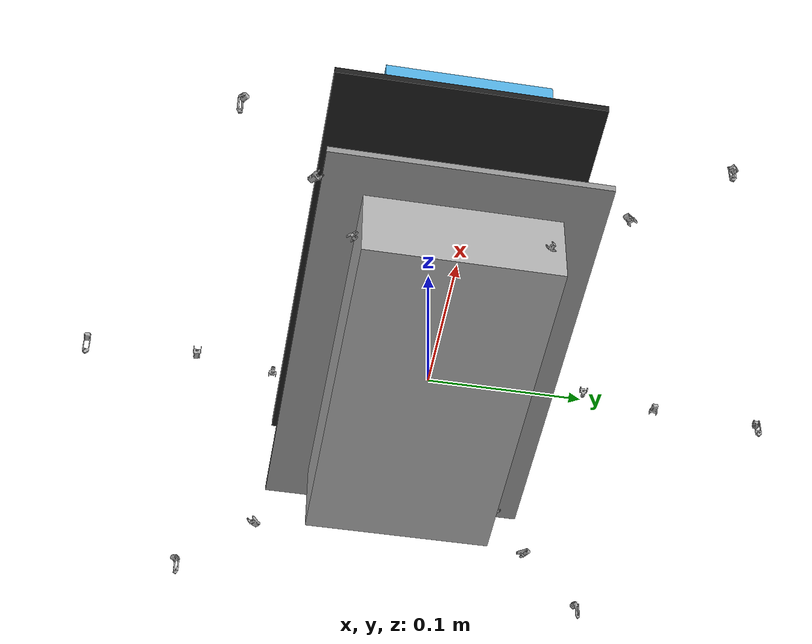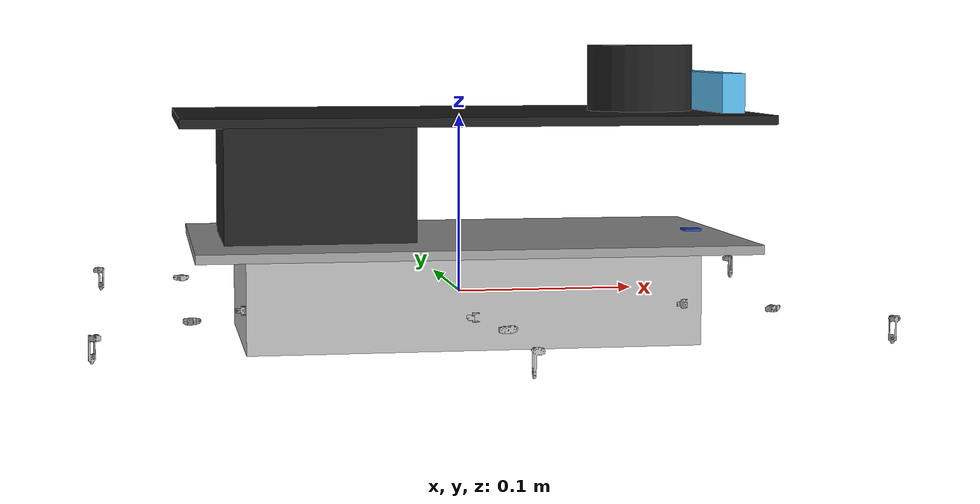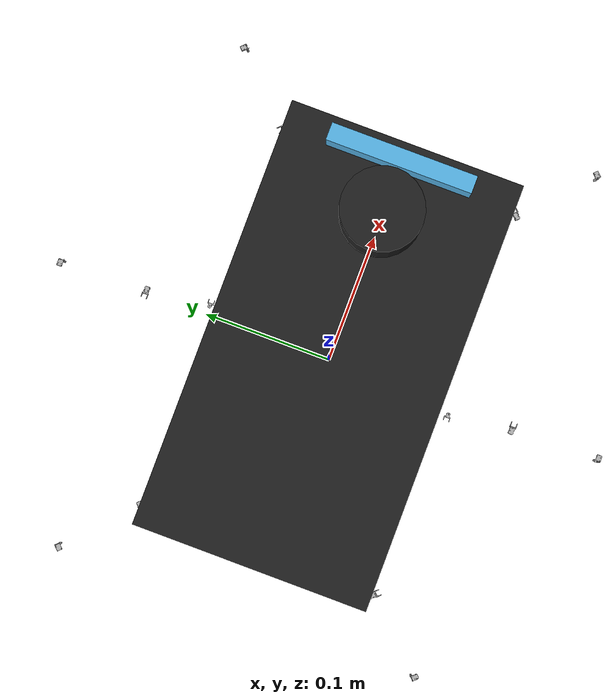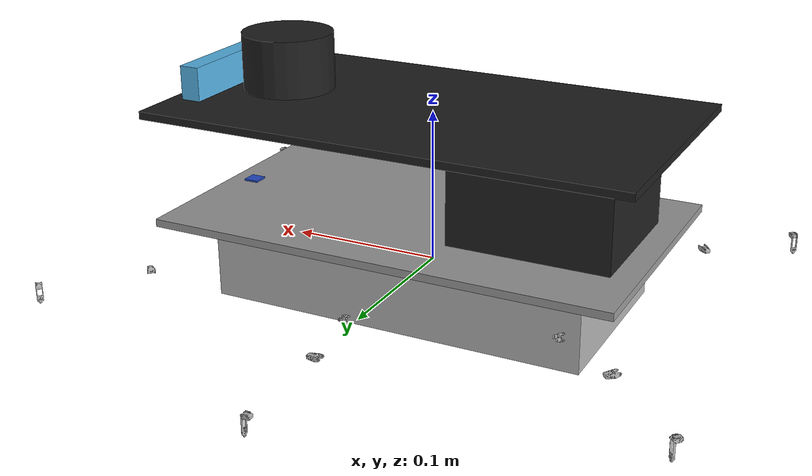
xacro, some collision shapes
<?xml version="1.0" encoding="UTF-8" ?>

<robot xmlns:xacro="http://ros.org/wiki/xacro" name="phantomX">

	<xacro:include filename="common/common_properties.xacro" />
	<xacro:include filename="accessories/accessories.urdf.xacro" />

	<!-- parameters -->
	<xacro:property name="pi" value="3.1415926535897931" />
	<xacro:property name="body_length_x" value="0.250" />
	<xacro:property name="body_length_y" value="0.125" />
	<xacro:property name="coxa_length" value="0.052" />
	<xacro:property name="femur_length" value="0.065" />
	<xacro:property name="tibia_length" value="0.133" />

	<gazebo>
		<plugin name="gazebo_ros_control" filename="libgazebo_ros_control.so">
			<robotNamespace>/phantomX</robotNamespace>
		</plugin>
	</gazebo>

	<link name="base_footprint"/>

	<joint name="base_joint" type="fixed">
		<parent link="base_footprint"/>
		<child link="base_link"/>
		<origin xyz="0 0 0" rpy="0 0 0"/>
	</joint>

	<link name="base_link"/>

	<joint name="body_joint" type="fixed">
		<parent link="base_link" />
		<child link="body_link" />
		<origin xyz="0.0 0.0 0.0" rpy="0.0 0.0 0.0" />
	</joint>

	<link name="body_link">
		<visual>
			<origin xyz="0.0 0.0 0.0" rpy="0.0 0.0 0.0" />
			<geometry>
				<mesh filename="package://hexapod_description/meshes/phantomX/body.stl" scale="0.001 0.001 0.001"/>
			</geometry>
			<material name="">
				<color rgba="0.7 0.7 0.7 1" />
			</material>
		</visual>
		<collision>
			<origin xyz="0.0 0.0 0.0" rpy="0.0 0.0 0.0"/>
			<geometry>
				<box size="${body_length_x} ${body_length_y} 0.05"/>
			</geometry>
			<material name="">
				<color rgba="0.9 0.9 0.9 0.75"/>
			</material>
		</collision>
	</link>
	<gazebo reference="body_link">
		<material>Gazebo/DarkGrey</material>
	</gazebo>

	<!-- Head Pan and Tilt properties -->

	<!-- Camera properties -->

	<joint name="mount_point_joint" type="fixed">
		<parent link="body_link"/>
		<child link="mount_point_link"/>
		<origin xyz="0 0 0.03" rpy="0 0 0"/>
	</joint>

	<!-- Joint properties -->
	<xacro:property name="joint_lower_limit" value="-2.6179939" />
	<xacro:property name="joint_upper_limit" value="2.6179939" />
	<xacro:property name="joint_effort" value="2.8" />
	<xacro:property name="joint_velocity" value="5.6548668" />

	<link name="mount_point_link"/>

	<!-- Leg macro -->
	<xacro:macro name="leg" params="side position x y angle axis">

		<!-- leg position -->

		<!-- coxa -->
		<joint name="coxa_joint_${side}${position}" type="revolute">
			<origin xyz="${x} ${y} 0.0" rpy="0.0 0.0 ${angle}" />
			<parent link="body_link" />
			<child link="coxa_${side}${position}" />
			<axis xyz="0.0 0.0 1.0" />
			<limit lower="${joint_lower_limit}" upper="${joint_upper_limit}" effort="${joint_effort}" velocity="${joint_velocity}" />
		</joint>
		<transmission name="coxa_transmission_${side}${position}">
			<type>transmission_interface/SimpleTransmission</type>
			<joint name="coxa_joint_${side}${position}">
				<hardwareInterface>hardware_interface/EffortJointInterface</hardwareInterface>
			</joint>
			<actuator name="coxa_motor_${side}${position}">
				<hardwareInterface>hardware_interface/EffortJointInterface</hardwareInterface>
				<mechanicalReduction>1</mechanicalReduction>
			</actuator>
		</transmission>
		<link name="coxa_${side}${position}">
			<visual>
				<origin xyz="0.0 0.0 0.0" rpy="0.0 0.0 0.0"/>
				<geometry>
					<mesh filename="package://hexapod_description/meshes/phantomX/coxa.stl" scale="0.001 0.001 0.001"/>
				</geometry>
				<material name="">
					<color rgba="0.7 0.7 0.7 1"/>
				</material>
			</visual>
			<collision>
				<origin xyz="0.006 0.0  0.0" rpy="0 0.0 0.0" />
				<geometry>
					<box size="0.0375 0.032 0.05"/>
				</geometry>
				<material name="">
					<color rgba="0.9 0.9 0.9 0.75" />
				</material>
			</collision>
			<inertial>
				<origin xyz="0.006 0.0 0.0" rpy="0.0 0.0 0.0" />
				<mass value="0.056"/>
				<inertia
					ixx="0.0000164453" ixy="0.0" ixz="0.0"
					iyy="0.0000182292" iyz="0.0"
					izz="0.0000113412"/>
			</inertial>
		</link>
		<gazebo reference="coxa_${side}${position}">
			<material>Gazebo/DarkGrey</material>
		</gazebo>

		<!-- femur -->
		<joint name="femur_joint_${side}${position}" type="revolute">
			<origin xyz="${coxa_length} 0.0 0.0" rpy="-${pi/2} ${pi/2} 0.0" />
			<parent link="coxa_${side}${position}" />
			<child link="femur_${side}${position}" />
			<axis xyz="0.0 0.0 ${-axis}" />
			<limit lower="${joint_lower_limit}" upper="${joint_upper_limit}" effort="${joint_effort}" velocity="${joint_velocity}" />
		</joint>
		<transmission name="femur_transmission_${side}${position}">
			<type>transmission_interface/SimpleTransmission</type>
			<joint name="femur_joint_${side}${position}">
				<hardwareInterface>hardware_interface/EffortJointInterface</hardwareInterface>
			</joint>
			<actuator name="femur_motor_${side}${position}">
				<hardwareInterface>hardware_interface/EffortJointInterface</hardwareInterface>
				<mechanicalReduction>1</mechanicalReduction>
			</actuator>
		</transmission>
		<link name="femur_${side}${position}">
			<visual>
				<origin xyz="0.0 0.0 0.0" rpy="0.0 0.0 0.0"/>
				<geometry>
					<mesh filename="package://hexapod_description/meshes/phantomX/femur.stl" scale="0.001 0.001 0.001"/>
				</geometry>
				<material name="">
					<color rgba="0.7 0.7 0.7 1"/>
				</material>
			</visual>
			<collision>
				<origin xyz="-0.004 -0.014 0.0" rpy="0.0 0.0 -${pi/12}" />
				<geometry>
					<box size="0.032 0.051 0.040"/>
				</geometry>
				<material name="">
					<color rgba="0.9 0.9 0.9 0.75" />
				</material>
			</collision>
			<inertial>
				<origin xyz="-0.004 -0.014 0.0" rpy="0.0 0.0 -${pi/12}" />
				<mass value="0.056"/>
				<inertia
					ixx="0.0000196047" ixy="0.0" ixz="0.0"
					iyy="0.0000122453" iyz="0.0"
					izz="0.0000169167"/>
			</inertial>
		</link>
		<gazebo reference="femur_${side}${position}">
			<material>Gazebo/DarkGrey</material>
		</gazebo>

		<!-- tibia -->
		<joint name="tibia_joint_${side}${position}" type="revolute">
			<origin xyz="0.0 -${femur_length} 0.0" rpy="${pi} 0.0 0.0" />
			<parent link="femur_${side}${position}" />
			<child link="tibia_${side}${position}" />
			<axis xyz="0.0 0.0 ${axis}" />
			<limit lower="${joint_lower_limit}" upper="${joint_upper_limit}" effort="${joint_effort}" velocity="${joint_velocity}" />
		</joint>
		<transmission name="tibia_transmission_${side}${position}">
			<type>transmission_interface/SimpleTransmission</type>
			<joint name="tibia_joint_${side}${position}">
				<hardwareInterface>hardware_interface/EffortJointInterface</hardwareInterface>
			</joint>
			<actuator name="tibia_motor_${side}${position}">
				<hardwareInterface>hardware_interface/EffortJointInterface</hardwareInterface>
				<mechanicalReduction>1</mechanicalReduction>
			</actuator>
		</transmission>
		<link name="tibia_${side}${position}">
			<visual>
				<origin xyz="0.0 0.0 0.0" rpy="0.0 0.0 0.0"/>
				<geometry>
					<mesh filename="package://hexapod_description/meshes/phantomX/tibia.stl" scale="0.001 0.001 0.001"/>
				</geometry>
				<material name="">
					<color rgba="0.7 0.7 0.7 1"/>
				</material>
			</visual>
			<collision>
				<origin xyz="0.05 0.025 0.0" rpy="0.0 0.0 0.0" />
				<geometry>
					<box size="0.125 0.032 0.040"/>
				</geometry>
				<material name="">
					<color rgba="0.9 0.9 0.9 0.75" />
				</material>
			</collision>
			<collision>
				<origin xyz="0.13 0.0285 0.0" rpy="0.0 0.0 0.0" />
				<geometry>
					<sphere radius="0.005"/>
				</geometry>
				<material name="">
					<color rgba="0.9 0.9 0.9 0.75" />
				</material>
			</collision>
			<inertial>
				<origin xyz="0.05 0.025 0.0" rpy="0.0 0.0 0.0" />
				<mass value="0.056"/>
				<inertia
					ixx="0.0000122453" ixy="0.0" ixz="0.0"
					iyy="0.0000803833" iyz="0.0"
					izz="0.0000776953"/>
			</inertial>
		</link>
		<gazebo reference="tibia_${side}${position}">
			<material>Gazebo/DarkGrey</material>
		</gazebo>

	</xacro:macro>

	<!-- Build robot model -->
	<xacro:leg side="R" position="R" x="-0.120" y="-0.060" angle="-${pi*3/4}" axis="1" />
	<xacro:leg side="R" position="M" x="0.0" y="-0.100" angle="-${pi/2}" axis="1" />
	<xacro:leg side="R" position="F" x="0.120" y="-0.060" angle="-${pi/4}" axis="1" />

	<xacro:leg side="L" position="R" x="-0.120" y="0.060" angle="${pi*3/4}" axis="-1" />
	<xacro:leg side="L" position="M" x="0.0" y="0.100" angle="${pi/2}" axis="-1" />
	<xacro:leg side="L" position="F" x="0.120" y="0.060" angle="${pi/4}" axis="-1" />

</robot>

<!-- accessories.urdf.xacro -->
<robot xmlns:xacro="http://www.ros.org/wiki/xacro">

  <!-- If enabled, generate the SLAM_PACK payload -->
  <xacro:include filename="SLAM_pack.urdf.xacro" />

    <joint name="slam_pack_mount_point" type="fixed">
      <origin xyz="0 0 0"
              rpy="0 0 0" />
      <parent link="mount_point_link" />
      <child link="slam_pack_mount_point" />
    </joint>

</robot>

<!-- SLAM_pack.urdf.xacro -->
<robot xmlns:xacro="http://www.ros.org/wiki/xacro">

  <xacro:include filename="$(find realsense_ros_gazebo)/xacro/tracker.xacro"/>

  <xacro:realsense_T265 sensor_name="camera" parent_link="top_plate_link" rate="30.0">
    <origin xyz="0.145 0.0 0.0125" rpy="0 0 0"/>
  </xacro:realsense_T265>

  <link name="slam_pack_mount_point">
    <visual>
      <origin xyz="0 0 0" rpy="0 0 0" />
      <geometry>
        <box size="0.305 0.178 0.005"/>
      </geometry>
      <material name="grey" />
    </visual>
    <inertial>
      <origin xyz="0.0 0.0 0.0" rpy="0.0 0.0 0.0" />
      <mass value="0.336"/>
      <inertia
        ixx="0.0005075" ixy="0.0" ixz="0.0"
        iyy="0.0018200" iyz="0.0"
        izz="0.0021875"/>
      </inertial>
  </link>

  <joint name="bottom_plate_link_joint" type="fixed">
    <parent link="slam_pack_mount_point"/>
    <child link="bottom_plate_link"/>
    <origin xyz="0 0 0" rpy="0 0 0"/>
  </joint>
  <link name="bottom_plate_link"/>

  <joint name="xavier_link_joint" type="fixed">
    <parent link="bottom_plate_link"/>
    <child link="xavier_link"/>
    <origin xyz="-0.0832 0 0.035" rpy="0 0 0"/>
  </joint>
  <link name="xavier_link">
    <visual>
      <origin xyz="0 0 0" rpy="0 0 0"/>
      <geometry>
        <box size="0.105 0.092 0.065"/>
      </geometry>
      <material name="light_black"/>
    </visual>
  </link>

  <joint name="top_plate_link_joint" type="fixed">
    <parent link="bottom_plate_link"/>
    <child link="top_plate_link"/>
    <origin xyz="0 0 0.07" rpy="0 0 0"/>
  </joint>
  <link name="top_plate_link">
    <visual>
      <origin xyz="0 0 0" rpy="0 0 0"/>
      <geometry>
        <box size="0.32 0.175 0.005"/>
      </geometry>
      <material name="black"/>
    </visual>
  </link>

  <link name="lidar_link">
    <visual>
      <origin xyz="0 0 0" rpy="0 0 0"/>
      <geometry>
        <cylinder length="0.04" radius="0.03"/>
      </geometry>
      <material name="light_black"/>
    </visual>
  </link>

  <joint name="lidar_link_joint" type="fixed">
    <parent link="top_plate_link"/>
    <child link="lidar_link"/>
    <origin xyz="0.105 0 0.02" rpy="0 0 ${pi}"/>
  </joint>

  <gazebo reference="lidar_link">
    <sensor name="gazebo_lidar" type="ray">
      <update_rate>12.0</update_rate>
      <plugin name="gazebo_lidar" filename="libgazebo_ros_laser.so">
        <topicName>scan</topicName>
        <namespace></namespace>
        <outputType>sensor_msgs/LaserScan</outputType>
        <frameName>lidar_link</frameName>
      </plugin>
      <ray>
        <scan>
          <horizontal>
            <samples>360</samples>
            <resolution>1</resolution>
            <min_angle>-3.14159</min_angle>
            <max_angle>3.14159</max_angle>
          </horizontal>
        </scan>
        <range>
          <min>0.120</min>
          <max>20</max>
          <resolution>0.015</resolution>
        </range>
        <noise>
          <type>gaussian</type>
          <mean>0.0</mean>
          <stddev>0.01</stddev>
        </noise>
      </ray>
    </sensor>
    <material>Gazebo/Grey</material>
  </gazebo>

  <link name="imu_link">
    <visual>
      <origin xyz="0 0 0" rpy="0 0 0"/>
      <geometry>
        <box size="0.01 0.01 0.002"/>
      </geometry>
      <material name="blue"/>
    </visual>
  </link>

  <joint name="imu_link_joint" type="fixed">
    <parent link="bottom_plate_link"/>
    <child link="imu_link"/>
    <origin xyz="0.1365 0 0.0026" rpy="0 0 0"/>
  </joint>

  <gazebo reference="imu_link">
    <sensor name="gazebo_imu" type="imu">
      <plugin name="gazebo_imu" filename="libgazebo_ros_imu_sensor.so">
        <updateRateHZ>30.0</updateRateHZ>
        <topicName>/imu</topicName>
        <frameName>imu_link</frameName>
      </plugin>
    </sensor>
    <material>Gazebo/Blue</material>
  </gazebo>

</robot>

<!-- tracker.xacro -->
<robot xmlns:xacro="http://www.ros.org/wiki/xacro">

  <xacro:macro name="T265_fisheye" params="sensor_name reference_frame topic rate">
    <gazebo reference="${reference_frame}">
      <sensor name="camera" type="wideanglecamera">
        <camera>
          <horizontal_fov>6.283</horizontal_fov>
          <image>
            <width>320</width>
            <height>240</height>
          </image>
          <clip>
            <near>0.1</near>
            <far>100</far>
          </clip>
          <lens>
            <type>custom</type>
            <custom_function>
              <c1>1.05</c1>
              <c2>4</c2>
              <f>1.0</f>
              <fun>tan</fun>
            </custom_function>
            <scale_to_hfov>true</scale_to_hfov>
            <cutoff_angle>6.283</cutoff_angle>
            <env_texture_size>512</env_texture_size>
          </lens>
          <always_on>true</always_on>
          <update_rate>30</update_rate>
        </camera>
        <plugin name="camera_controller" filename="libgazebo_ros_camera.so">
          <cameraName>${sensor_name}/${topic}</cameraName>
          <imageTopicName>image_raw</imageTopicName>
          <cameraInfoTopicName>camera_info</cameraInfoTopicName>
          <frameName>${reference_frame}</frameName>
          <hackBaseline>0.07</hackBaseline>
          <distortionK1>-0.007419134024530649</distortionK1>
          <distortionK2>0.041209351271390915</distortionK2>
          <distortionK3>-0.03811917081475258</distortionK3>
          <distortionT1>0.006366158835589886</distortionT1>
          <distortionT2>0.0</distortionT2>
          <CxPrime>416.00531005859375</CxPrime>
          <Cx>16.00531005859375</Cx>
          <Cy>403.38909912109375</Cy>
        </plugin>
      </sensor>
    </gazebo>
  </xacro:macro>

  <!-- INTEL REALSENSE T265 -->

  <xacro:macro name="realsense_T265" params="sensor_name parent_link rate *origin">

    <joint name="${sensor_name}_odom_frame_joint" type="fixed">
        <parent link="${parent_link}"/>
        <child link="${sensor_name}_odom_frame"/>
        <xacro:insert_block name="origin"/>
    </joint>

    <joint name="${sensor_name}_pose_frame_joint" type="fixed">
        <parent link="${sensor_name}_odom_frame"/>
        <child link="${sensor_name}_pose_frame"/>
        <origin rpy="0 0 0" xyz="0 0 0"/> <!-- check on real hw -->
    </joint>
    <link name="${sensor_name}_odom_frame" />

    <link name="${sensor_name}_pose_frame">
        <visual>
            <origin rpy="1.57 0 1.57" xyz="0 0 -0.478"/>
            <geometry>
                <mesh filename="package://realsense_ros_gazebo/meshes/realsense_t265.stl" scale="0.001 0.001 0.001"/>
            </geometry>
        </visual>
        <collision>
            <geometry>
                <box size="0.013 0.108 0.024"/>
            </geometry>
        </collision>
        <inertial>
            <mass value="0.055"/>
            <origin rpy="0 0 0" xyz="0 0 0"/>
            <inertia ixx="9.108e-05"
                     ixy="0"
                     ixz="0"
                     iyy="2.51e-06"
                     iyz="0"
                     izz="8.931e-05"/>
        </inertial>
    </link>

    <joint name="${sensor_name}_joint" type="fixed">
        <parent link="${sensor_name}_pose_frame"/>
        <child link="${sensor_name}_link"/>
        <origin rpy="0 0 0" xyz="0 0 0"/> <!-- check on real hw -->
    </joint>
    <link name="${sensor_name}_link"/>

    <joint name="${sensor_name}_fisheye1_joint" type="fixed">
        <parent link="${sensor_name}_link"/>
        <child link="${sensor_name}_fisheye1_frame"/>
        <origin rpy="0 0 0" xyz="0 0.042 0"/>
    </joint>
    <link name="${sensor_name}_fisheye1_frame"/>

    <joint name="${sensor_name}_fisheye1_optical_joint" type="fixed">
        <parent link="${sensor_name}_fisheye1_frame"/>
        <child link="${sensor_name}_fisheye1_optical_frame"/>
        <origin rpy="0 0 0" xyz="0.01 0 0"/>
    </joint>
    <link name="${sensor_name}_fisheye1_optical_frame"/>
    <xacro:T265_fisheye
      sensor_name="${sensor_name}"
      reference_frame="${sensor_name}_fisheye1_optical_frame"
      topic="fisheye1"
      rate="${rate}">
    </xacro:T265_fisheye>

    <joint name="${sensor_name}_fisheye2_joint" type="fixed">
        <parent link="${sensor_name}_link"/>
        <child link="${sensor_name}_fisheye2_frame"/>
        <origin rpy="0 0 0" xyz="0 -0.022 0"/>
    </joint>
    <link name="${sensor_name}_fisheye2_frame"/>

    <joint name="${sensor_name}_fisheye2_optical_joint" type="fixed">
        <parent link="${sensor_name}_fisheye2_frame"/>
        <child link="${sensor_name}_fisheye2_optical_frame"/>
        <origin rpy="0 0 0" xyz="0.01 0 0"/>
    </joint>
    <link name="${sensor_name}_fisheye2_optical_frame"/>
    <xacro:T265_fisheye
      sensor_name="${sensor_name}"
      reference_frame="${sensor_name}_fisheye2_optical_frame"
      topic="fisheye2"
      rate="${rate}">
    </xacro:T265_fisheye>

    <joint name="${sensor_name}_gyro_joint" type="fixed">
        <parent link="${sensor_name}_link"/>
        <child link="${sensor_name}_gyro_frame"/>
        <origin rpy="0 0 0" xyz="0 0 0"/> <!-- check on real hw -->
    </joint>
    <link name="${sensor_name}_gyro_frame"/>

    <gazebo reference="${sensor_name}_gyro_frame">
        <gravity>true</gravity>
        <sensor name="${sensor_name}_imu" type="imu">
            <always_on>true</always_on>
            <update_rate>${rate}</update_rate>
            <visualize>false</visualize>
            <plugin filename="libgazebo_ros_imu_sensor.so" name="imu_plugin">
                <topicName>${sensor_name}/gyro/sample</topicName>
                <bodyName>${sensor_name}_pose_frame</bodyName>
                <updateRateHZ>${rate}</updateRateHZ>
                <gaussianNoise>0.000001</gaussianNoise>
                <xyzOffset>0 0 0</xyzOffset>
                <rpyOffset>0 0 0</rpyOffset>
                <frameName>${sensor_name}_link</frameName>
            </plugin>
        </sensor>
    </gazebo>

    <joint name="${sensor_name}_accel_joint" type="fixed">
        <parent link="${sensor_name}_link"/>
        <child link="${sensor_name}_accel_frame"/>
        <origin rpy="0 0 0" xyz="0 0 0"/> <!-- check on real hw -->
    </joint>
    <link name="${sensor_name}_accel_frame"/> <!-- dummy -->

    <gazebo> <!-- odometry -->
        <plugin name="p3d_base_controller" filename="libgazebo_ros_p3d.so">
            <alwaysOn>true</alwaysOn>
            <updateRate>${rate}</updateRate>
            <bodyName>${sensor_name}_odom_frame</bodyName>
            <topicName>${sensor_name}/odom/sample</topicName>
            <gaussianNoise>0.001</gaussianNoise>
            <frameName>map</frameName>
            <xyzOffsets>0 0 0</xyzOffsets>
            <rpyOffsets>0 0 0</rpyOffsets>
        </plugin>
    </gazebo>

  </xacro:macro>

</robot>
